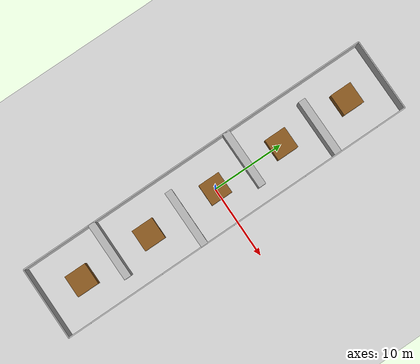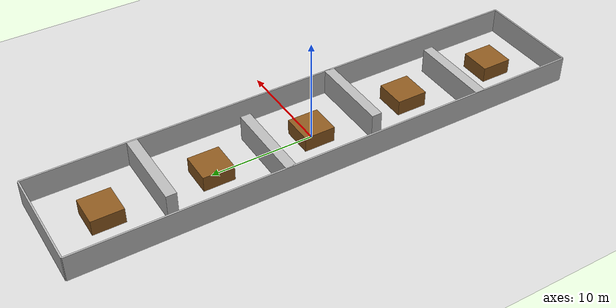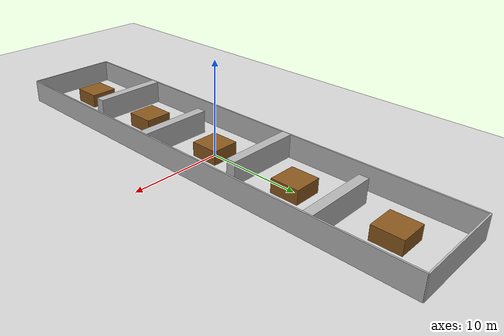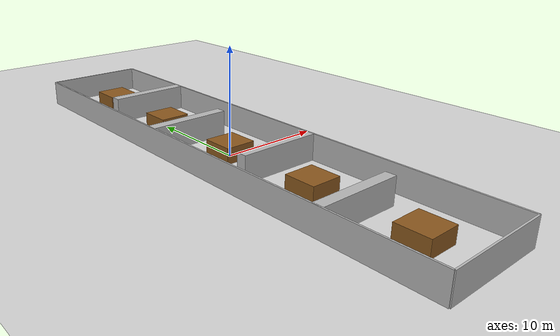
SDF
<?xml version="1.0"?>
<sdf version="1.7">
  <world name="pr1_world">

    <!-- ========== GAZEBO ROS PLUGINS ========== -->
    <plugin name="gazebo_ros_state" filename="libgazebo_ros_state.so">
      <ros>
        <namespace>/gazebo</namespace>
      </ros>
      <update_rate>10.0</update_rate>
    </plugin>

    <!-- ========== LIGHTING ========== -->
    <light name="sun" type="directional">
      <cast_shadows>0</cast_shadows>
      <pose>0 0 10 0 0 0</pose>
      <diffuse>0.6 0.6 0.6 1</diffuse>
      <specular>0.1 0.1 0.1 1</specular>
      <attenuation>
        <range>1000</range>
        <constant>0.9</constant>
        <linear>0.01</linear>
        <quadratic>0.001</quadratic>
      </attenuation>
      <direction>0 0 -1</direction>
      <spot><inner_angle>0</inner_angle><outer_angle>0</outer_angle><falloff>0</falloff></spot>
    </light>

    <!-- ========== PHYSICS ========== -->
    <gravity>0 0 -9.8</gravity>
    <magnetic_field>6e-06 2.3e-05 -4.2e-05</magnetic_field>
    <atmosphere type="adiabatic"/>
    <physics type="ode">
      <max_step_size>0.001</max_step_size>
      <real_time_factor>1</real_time_factor>
      <real_time_update_rate>1000</real_time_update_rate>
    </physics>

    <!-- ========== SCENE ========== -->
    <scene>
      <ambient>0.4 0.4 0.4 1</ambient>
      <background>0.5 0.5 0.5 1</background>
      <shadows>0</shadows>
    </scene>

    <audio><device>default</device></audio>
    <wind/>
    <spherical_coordinates>
      <surface_model>EARTH_WGS84</surface_model>
      <latitude_deg>0</latitude_deg>
      <longitude_deg>0</longitude_deg>
      <elevation>0</elevation>
      <heading_deg>0</heading_deg>
    </spherical_coordinates>

    <!-- ========== GROUND PLANE ========== -->
    <model name="ground_plane">
      <static>1</static>
      <link name="link">
        <collision name="collision">
          <geometry><plane><normal>0 0 1</normal><size>200 200</size></plane></geometry>
          <surface>
            <friction><ode><mu>100</mu><mu2>50</mu2></ode><torsional><ode/></torsional></friction>
            <contact><ode/></contact>
            <bounce/>
          </surface>
          <max_contacts>10</max_contacts>
        </collision>
        <visual name="visual">
          <cast_shadows>0</cast_shadows>
          <geometry><plane><normal>0 0 1</normal><size>200 200</size></plane></geometry>
          <material>
            <ambient>0.85 0.85 0.85 1</ambient>
            <diffuse>0.85 0.85 0.85 1</diffuse>
            <specular>0.05 0.05 0.05 1</specular>
          </material>
        </visual>
        <self_collide>0</self_collide><enable_wind>0</enable_wind><kinematic>0</kinematic>
      </link>
    </model>

    <!-- ROOM WALLS                                                  -->
    <!-- Room: 10m wide (x: -5 to 5), 50m long (y: -25 to 25)     -->
    <!-- Wall height: 2.5m                                           -->
    <!-- Entry: south end (y=-50), open full width                   -->
    <!-- Exit:  north end (y=+50), open full width                   -->
    <model name="pr1_room_walls">
      <static>1</static>
      <pose>0 0 0 0 0 0</pose>

      <!-- West wall: full 50m -->
      <link name="Wall_west">
        <collision name="col"><geometry><box><size>0.15 50.0 2.5</size></box></geometry><pose>0 0 1.25 0 0 0</pose><max_contacts>10</max_contacts><surface><contact><ode/></contact><bounce/><friction><torsional><ode/></torsional><ode/></friction></surface></collision>
        <visual name="vis"><pose>0 0 1.25 0 0 0</pose><geometry><box><size>0.15 50.0 2.5</size></box></geometry><material><script><uri>file://media/materials/scripts/gazebo.material</uri><n>Gazebo/Grey</n></script></material></visual>
        <pose>-5.0 0 0 0 0 0</pose>
        <self_collide>0</self_collide><enable_wind>0</enable_wind><kinematic>0</kinematic>
      </link>

      <!-- East wall: full 50m -->
      <link name="Wall_east">
        <collision name="col"><geometry><box><size>0.15 50.0 2.5</size></box></geometry><pose>0 0 1.25 0 0 0</pose><max_contacts>10</max_contacts><surface><contact><ode/></contact><bounce/><friction><torsional><ode/></torsional><ode/></friction></surface></collision>
        <visual name="vis"><pose>0 0 1.25 0 0 0</pose><geometry><box><size>0.15 50.0 2.5</size></box></geometry><material><script><uri>file://media/materials/scripts/gazebo.material</uri><n>Gazebo/Grey</n></script></material></visual>
        <pose>5.0 0 0 0 0 0</pose>
        <self_collide>0</self_collide><enable_wind>0</enable_wind><kinematic>0</kinematic>
      </link>

      <!-- South wall: full 10m -->
      <link name="Wall_south">
        <collision name="col"><geometry><box><size>10.0 0.15 2.5</size></box></geometry><pose>0 0 1.25 0 0 0</pose><max_contacts>10</max_contacts><surface><contact><ode/></contact><bounce/><friction><torsional><ode/></torsional><ode/></friction></surface></collision>
        <visual name="vis"><pose>0 0 1.25 0 0 0</pose><geometry><box><size>10.0 0.15 2.5</size></box></geometry><material><script><uri>file://media/materials/scripts/gazebo.material</uri><n>Gazebo/Grey</n></script></material></visual>
        <pose>0 -25.0 0 0 0 0</pose>
        <self_collide>0</self_collide><enable_wind>0</enable_wind><kinematic>0</kinematic>
      </link>

      <!-- North wall: full 10m -->
      <link name="Wall_north">
        <collision name="col"><geometry><box><size>10.0 0.15 2.5</size></box></geometry><pose>0 0 1.25 0 0 0</pose><max_contacts>10</max_contacts><surface><contact><ode/></contact><bounce/><friction><torsional><ode/></torsional><ode/></friction></surface></collision>
        <visual name="vis"><pose>0 0 1.25 0 0 0</pose><geometry><box><size>10.0 0.15 2.5</size></box></geometry><material><script><uri>file://media/materials/scripts/gazebo.material</uri><n>Gazebo/Grey</n></script></material></visual>
        <pose>0 25.0 0 0 0 0</pose>
        <self_collide>0</self_collide><enable_wind>0</enable_wind><kinematic>0</kinematic>
      </link>

    </model>

    <!-- CORRIDORS (wall-height 2.5m, DarkGrey)                     -->
    <!-- Each corridor: 8m along x-axis, 1.0m thick along y-axis    -->
    <!-- Zigzag pattern alternating west/east attachment             -->
    <!-- Corridor-1: west-attached, x center=-1.0, y=-15            -->
    <!-- Corridor-2: east-attached, x center=1.0,  y=-5             -->
    <!-- Corridor-3: west-attached, x center=-1.0, y=5              -->
    <!-- Corridor-4: east-attached, x center=1.0,  y=15             -->

    <!-- Corridor-1 (west-attached, y=-15) -->
    <model name="corridor_1">
      <static>1</static>
      <pose>-1.0 -15.0 0 0 0 0</pose>
      <link name="link">
        <collision name="col"><geometry><box><size>8.0 1.0 2.5</size></box></geometry><pose>0 0 1.25 0 0 0</pose><max_contacts>10</max_contacts><surface><contact><ode/></contact><bounce/><friction><torsional><ode/></torsional><ode/></friction></surface></collision>
        <visual name="vis"><pose>0 0 1.25 0 0 0</pose><geometry><box><size>8.0 1.0 2.5</size></box></geometry><material><script><uri>file://media/materials/scripts/gazebo.material</uri><n>Gazebo/DarkGrey</n></script></material></visual>
        <self_collide>0</self_collide><enable_wind>0</enable_wind><kinematic>0</kinematic>
      </link>
    </model>

    <!-- Corridor-2 (east-attached, y=-5) -->
    <model name="corridor_2">
      <static>1</static>
      <pose>1.0 -5.0 0 0 0 0</pose>
      <link name="link">
        <collision name="col"><geometry><box><size>8.0 1.0 2.5</size></box></geometry><pose>0 0 1.25 0 0 0</pose><max_contacts>10</max_contacts><surface><contact><ode/></contact><bounce/><friction><torsional><ode/></torsional><ode/></friction></surface></collision>
        <visual name="vis"><pose>0 0 1.25 0 0 0</pose><geometry><box><size>8.0 1.0 2.5</size></box></geometry><material><script><uri>file://media/materials/scripts/gazebo.material</uri><n>Gazebo/DarkGrey</n></script></material></visual>
        <self_collide>0</self_collide><enable_wind>0</enable_wind><kinematic>0</kinematic>
      </link>
    </model>

    <!-- Corridor-3 (west-attached, y=5) -->
    <model name="corridor_3">
      <static>1</static>
      <pose>-1.0 5.0 0 0 0 0</pose>
      <link name="link">
        <collision name="col"><geometry><box><size>8.0 1.0 2.5</size></box></geometry><pose>0 0 1.25 0 0 0</pose><max_contacts>10</max_contacts><surface><contact><ode/></contact><bounce/><friction><torsional><ode/></torsional><ode/></friction></surface></collision>
        <visual name="vis"><pose>0 0 1.25 0 0 0</pose><geometry><box><size>8.0 1.0 2.5</size></box></geometry><material><script><uri>file://media/materials/scripts/gazebo.material</uri><n>Gazebo/DarkGrey</n></script></material></visual>
        <self_collide>0</self_collide><enable_wind>0</enable_wind><kinematic>0</kinematic>
      </link>
    </model>

    <!-- Corridor-4 (east-attached, y=15) -->
    <model name="corridor_4">
      <static>1</static>
      <pose>1.0 15.0 0 0 0 0</pose>
      <link name="link">
        <collision name="col"><geometry><box><size>8.0 1.0 2.5</size></box></geometry><pose>0 0 1.25 0 0 0</pose><max_contacts>10</max_contacts><surface><contact><ode/></contact><bounce/><friction><torsional><ode/></torsional><ode/></friction></surface></collision>
        <visual name="vis"><pose>0 0 1.25 0 0 0</pose><geometry><box><size>8.0 1.0 2.5</size></box></geometry><material><script><uri>file://media/materials/scripts/gazebo.material</uri><n>Gazebo/DarkGrey</n></script></material></visual>
        <self_collide>0</self_collide><enable_wind>0</enable_wind><kinematic>0</kinematic>
      </link>
    </model>

    <!-- BOXES (cardboard brown, 1.0x1.0x1.0m)                     -->
    <!-- Centered at x=0 (shorter edge center)                      -->
    <!-- Box-1: y=-20 (between south wall and corridor-1)           -->
    <!-- Box-2: y=-10 (between corridor-1 and corridor-2)           -->
    <!-- Box-3: y=0   (between corridor-2 and corridor-3)           -->
    <!-- Box-4: y=10  (between corridor-3 and corridor-4)           -->
    <!-- Box-5: y=20  (between corridor-4 and north wall)           -->

    <!-- Box-1 (y=-20) -->
    <model name="box_1">
      <static>1</static>
      <pose>0.0 -20.0 0 0 0 0</pose>
      <link name="link">
        <collision name="col"><geometry><box><size>3.0 3.0 1.5</size></box></geometry><pose>0 0 0.75 0 0 0</pose><max_contacts>10</max_contacts><surface><contact><ode/></contact><bounce/><friction><torsional><ode/></torsional><ode/></friction></surface></collision>
        <visual name="vis"><pose>0 0 0.75 0 0 0</pose><geometry><box><size>3.0 3.0 1.5</size></box></geometry><material><ambient>0.55 0.35 0.12 1</ambient><diffuse>0.55 0.35 0.12 1</diffuse><specular>0.05 0.03 0.01 1</specular></material></visual>
        <self_collide>0</self_collide><enable_wind>0</enable_wind><kinematic>0</kinematic>
      </link>
    </model>

    <!-- Box-2 (y=-10) -->
    <model name="box_2">
      <static>1</static>
      <pose>0.0 -10.0 0 0 0 0</pose>
      <link name="link">
        <collision name="col"><geometry><box><size>3.0 3.0 1.5</size></box></geometry><pose>0 0 0.75 0 0 0</pose><max_contacts>10</max_contacts><surface><contact><ode/></contact><bounce/><friction><torsional><ode/></torsional><ode/></friction></surface></collision>
        <visual name="vis"><pose>0 0 0.75 0 0 0</pose><geometry><box><size>3.0 3.0 1.5</size></box></geometry><material><ambient>0.55 0.35 0.12 1</ambient><diffuse>0.55 0.35 0.12 1</diffuse><specular>0.05 0.03 0.01 1</specular></material></visual>
        <self_collide>0</self_collide><enable_wind>0</enable_wind><kinematic>0</kinematic>
      </link>
    </model>

    <!-- Box-3 (y=0) -->
    <model name="box_3">
      <static>1</static>
      <pose>0.0 0.0 0 0 0 0</pose>
      <link name="link">
        <collision name="col"><geometry><box><size>3.0 3.0 1.5</size></box></geometry><pose>0 0 0.75 0 0 0</pose><max_contacts>10</max_contacts><surface><contact><ode/></contact><bounce/><friction><torsional><ode/></torsional><ode/></friction></surface></collision>
        <visual name="vis"><pose>0 0 0.75 0 0 0</pose><geometry><box><size>3.0 3.0 1.5</size></box></geometry><material><ambient>0.55 0.35 0.12 1</ambient><diffuse>0.55 0.35 0.12 1</diffuse><specular>0.05 0.03 0.01 1</specular></material></visual>
        <self_collide>0</self_collide><enable_wind>0</enable_wind><kinematic>0</kinematic>
      </link>
    </model>

    <!-- Box-4 (y=10) -->
    <model name="box_4">
      <static>1</static>
      <pose>0.0 10.0 0 0 0 0</pose>
      <link name="link">
        <collision name="col"><geometry><box><size>3.0 3.0 1.5</size></box></geometry><pose>0 0 0.75 0 0 0</pose><max_contacts>10</max_contacts><surface><contact><ode/></contact><bounce/><friction><torsional><ode/></torsional><ode/></friction></surface></collision>
        <visual name="vis"><pose>0 0 0.75 0 0 0</pose><geometry><box><size>3.0 3.0 1.5</size></box></geometry><material><ambient>0.55 0.35 0.12 1</ambient><diffuse>0.55 0.35 0.12 1</diffuse><specular>0.05 0.03 0.01 1</specular></material></visual>
        <self_collide>0</self_collide><enable_wind>0</enable_wind><kinematic>0</kinematic>
      </link>
    </model>

    <!-- Box-5 (y=20) -->
    <model name="box_5">
      <static>1</static>
      <pose>0.0 20.0 0 0 0 0</pose>
      <link name="link">
        <collision name="col"><geometry><box><size>3.0 3.0 1.5</size></box></geometry><pose>0 0 0.75 0 0 0</pose><max_contacts>10</max_contacts><surface><contact><ode/></contact><bounce/><friction><torsional><ode/></torsional><ode/></friction></surface></collision>
        <visual name="vis"><pose>0 0 0.75 0 0 0</pose><geometry><box><size>3.0 3.0 1.5</size></box></geometry><material><ambient>0.55 0.35 0.12 1</ambient><diffuse>0.55 0.35 0.12 1</diffuse><specular>0.05 0.03 0.01 1</specular></material></visual>
        <self_collide>0</self_collide><enable_wind>0</enable_wind><kinematic>0</kinematic>
      </link>
    </model>

    <!-- ========== GUI CAMERA ========== -->
    <gui fullscreen="0">
      <camera name="user_camera">
        <pose>0 -30 40 0 0.785 1.5708</pose>
        <view_controller>orbit</view_controller>
        <projection_type>perspective</projection_type>
      </camera>
    </gui>

  </world>
</sdf>
